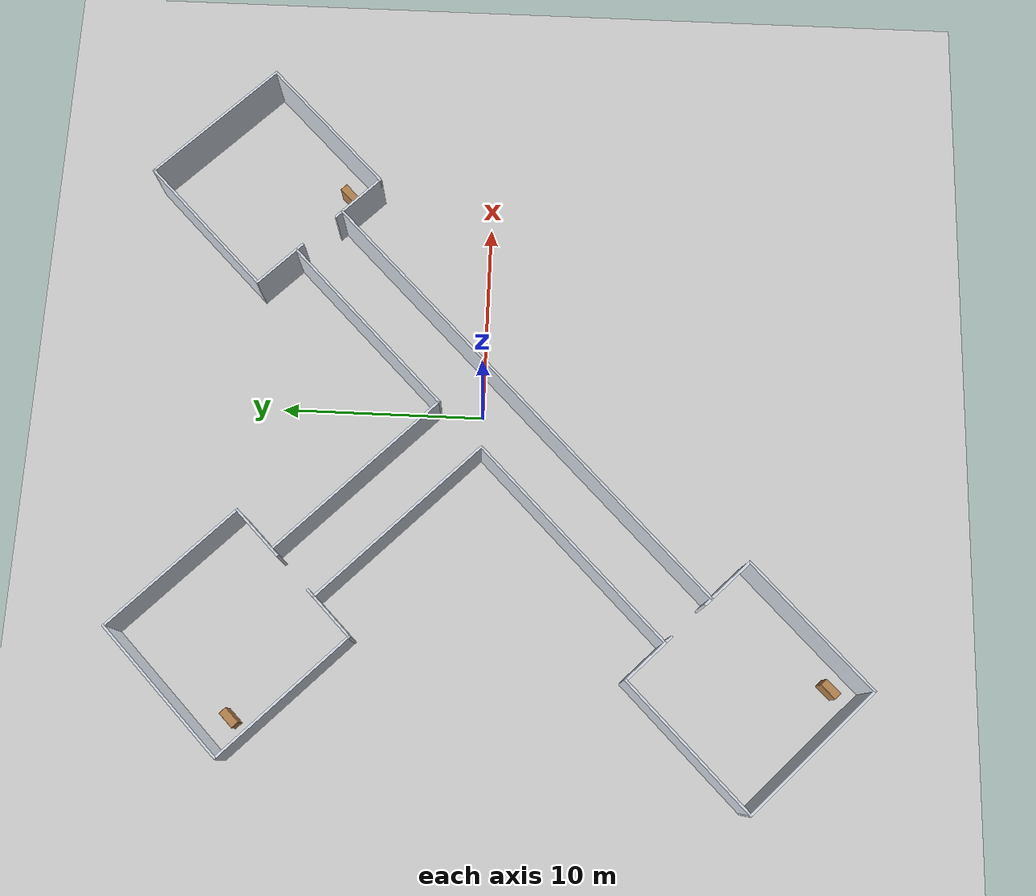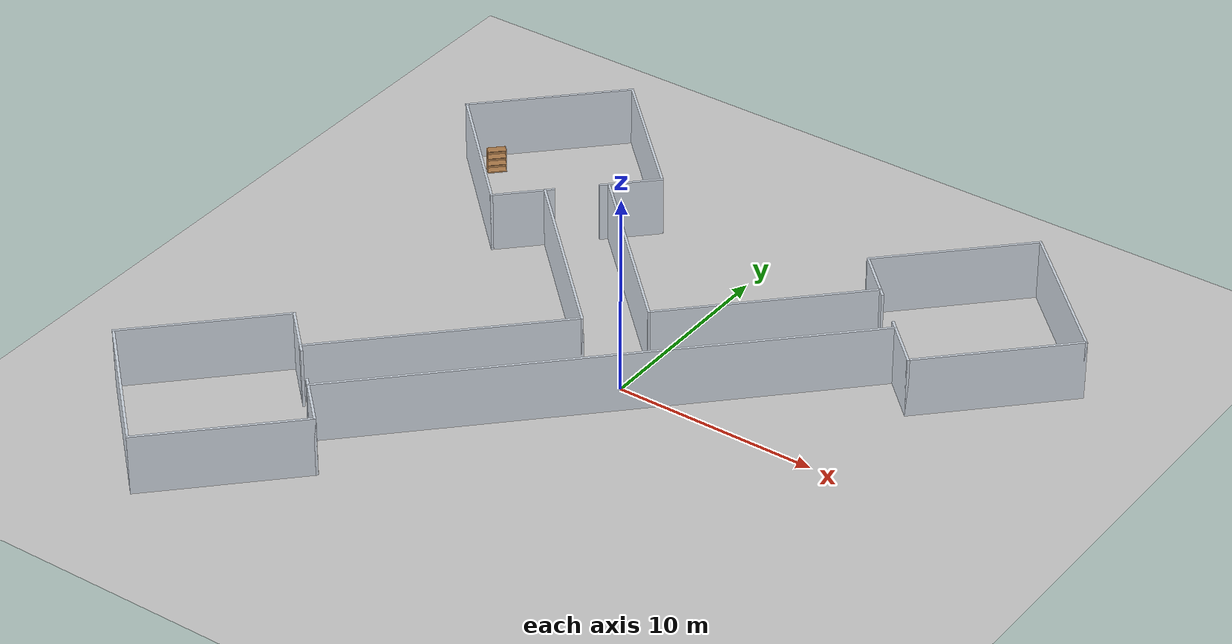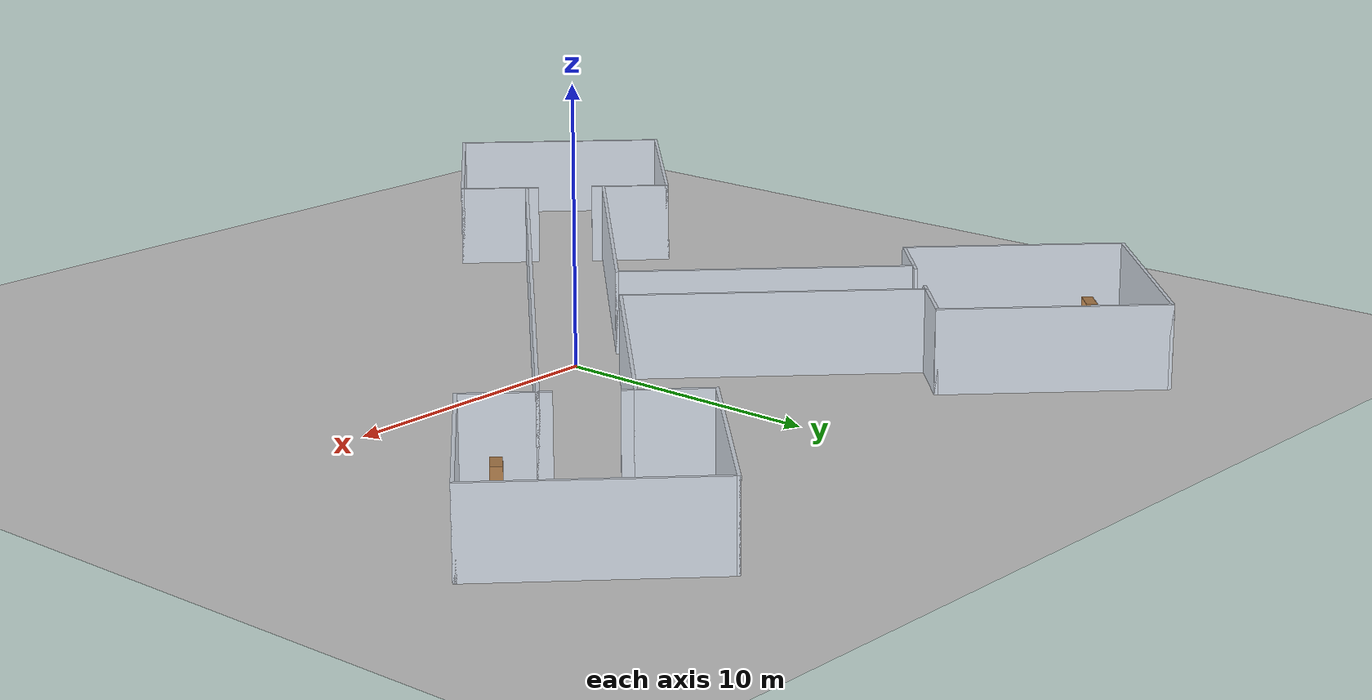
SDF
<sdf version="1.6">
 <world name="semantic_t_junction_rotated">
  <gravity>0 0 -9.8</gravity>
  <physics type="ode">
   <max_step_size>0.001</max_step_size>
   <real_time_factor>1</real_time_factor>
   <real_time_update_rate>1000</real_time_update_rate>
  </physics>
  <scene>
   <ambient>0.45 0.45 0.45 1</ambient>
   <background>0.72 0.72 0.72 1</background>
   <shadows>true</shadows>
  </scene>
  <light name="sun" type="directional">
   <pose>0 0 10 0 0 0</pose>
   <diffuse>0.8 0.8 0.8 1</diffuse>
   <specular>0.2 0.2 0.2 1</specular>
   <direction>-0.5 0.2 -0.9</direction>
  </light>
  <model name="ground_plane">
   <static>true</static>
   <link name="link">
    <collision name="collision">
     <geometry><plane><normal>0 0 1</normal><size>60 60</size></plane></geometry>
    </collision>
    <visual name="visual">
     <geometry><plane><normal>0 0 1</normal><size>60 60</size></plane></geometry>
     <material>
      <script><uri>file://media/materials/scripts/gazebo.material</uri><name>Gazebo/Grey</name></script>
     </material>
    </visual>
   </link>
  </model>
  <model name="semantic_room_structure">
   <static>true</static>
   <link name="walls">
    <collision name="wall_0_collision">
     <pose>-18.0 -4.0 1.5 0 0 0.0</pose>
     <geometry><box><size>8.12 0.12 3</size></box></geometry>
    </collision>
    <visual name="wall_0_visual">
     <pose>-18.0 -4.0 1.5 0 0 0.0</pose>
     <geometry><box><size>8.12 0.12 3</size></box></geometry>
     <material><ambient>0.82 0.85 0.89 1</ambient><diffuse>0.82 0.85 0.89 1</diffuse></material>
    </visual>
    <collision name="wall_1_collision">
     <pose>16.0 -4.0 1.5 0 0 0.0</pose>
     <geometry><box><size>8.12 0.12 3</size></box></geometry>
    </collision>
    <visual name="wall_1_visual">
     <pose>16.0 -4.0 1.5 0 0 0.0</pose>
     <geometry><box><size>8.12 0.12 3</size></box></geometry>
     <material><ambient>0.82 0.85 0.89 1</ambient><diffuse>0.82 0.85 0.89 1</diffuse></material>
    </visual>
    <collision name="wall_2_collision">
     <pose>-1.0 -1.5 1.5 0 0 0.0</pose>
     <geometry><box><size>26.12 0.12 3</size></box></geometry>
    </collision>
    <visual name="wall_2_visual">
     <pose>-1.0 -1.5 1.5 0 0 0.0</pose>
     <geometry><box><size>26.12 0.12 3</size></box></geometry>
     <material><ambient>0.82 0.85 0.89 1</ambient><diffuse>0.82 0.85 0.89 1</diffuse></material>
    </visual>
    <collision name="wall_3_collision">
     <pose>-7.75 1.5 1.5 0 0 0.0</pose>
     <geometry><box><size>12.62 0.12 3</size></box></geometry>
    </collision>
    <visual name="wall_3_visual">
     <pose>-7.75 1.5 1.5 0 0 0.0</pose>
     <geometry><box><size>12.62 0.12 3</size></box></geometry>
     <material><ambient>0.82 0.85 0.89 1</ambient><diffuse>0.82 0.85 0.89 1</diffuse></material>
    </visual>
    <collision name="wall_4_collision">
     <pose>6.75 1.5 1.5 0 0 0.0</pose>
     <geometry><box><size>10.62 0.12 3</size></box></geometry>
    </collision>
    <visual name="wall_4_visual">
     <pose>6.75 1.5 1.5 0 0 0.0</pose>
     <geometry><box><size>10.62 0.12 3</size></box></geometry>
     <material><ambient>0.82 0.85 0.89 1</ambient><diffuse>0.82 0.85 0.89 1</diffuse></material>
    </visual>
    <collision name="wall_5_collision">
     <pose>-18.0 4.0 1.5 0 0 0.0</pose>
     <geometry><box><size>8.12 0.12 3</size></box></geometry>
    </collision>
    <visual name="wall_5_visual">
     <pose>-18.0 4.0 1.5 0 0 0.0</pose>
     <geometry><box><size>8.12 0.12 3</size></box></geometry>
     <material><ambient>0.82 0.85 0.89 1</ambient><diffuse>0.82 0.85 0.89 1</diffuse></material>
    </visual>
    <collision name="wall_6_collision">
     <pose>16.0 4.0 1.5 0 0 0.0</pose>
     <geometry><box><size>8.12 0.12 3</size></box></geometry>
    </collision>
    <visual name="wall_6_visual">
     <pose>16.0 4.0 1.5 0 0 0.0</pose>
     <geometry><box><size>8.12 0.12 3</size></box></geometry>
     <material><ambient>0.82 0.85 0.89 1</ambient><diffuse>0.82 0.85 0.89 1</diffuse></material>
    </visual>
    <collision name="wall_7_collision">
     <pose>-2.75 12.0 1.5 0 0 0.0</pose>
     <geometry><box><size>2.62 0.12 3</size></box></geometry>
    </collision>
    <visual name="wall_7_visual">
     <pose>-2.75 12.0 1.5 0 0 0.0</pose>
     <geometry><box><size>2.62 0.12 3</size></box></geometry>
     <material><ambient>0.82 0.85 0.89 1</ambient><diffuse>0.82 0.85 0.89 1</diffuse></material>
    </visual>
    <collision name="wall_8_collision">
     <pose>2.75 12.0 1.5 0 0 0.0</pose>
     <geometry><box><size>2.62 0.12 3</size></box></geometry>
    </collision>
    <visual name="wall_8_visual">
     <pose>2.75 12.0 1.5 0 0 0.0</pose>
     <geometry><box><size>2.62 0.12 3</size></box></geometry>
     <material><ambient>0.82 0.85 0.89 1</ambient><diffuse>0.82 0.85 0.89 1</diffuse></material>
    </visual>
    <collision name="wall_9_collision">
     <pose>0.0 20.0 1.5 0 0 0.0</pose>
     <geometry><box><size>8.12 0.12 3</size></box></geometry>
    </collision>
    <visual name="wall_9_visual">
     <pose>0.0 20.0 1.5 0 0 0.0</pose>
     <geometry><box><size>8.12 0.12 3</size></box></geometry>
     <material><ambient>0.82 0.85 0.89 1</ambient><diffuse>0.82 0.85 0.89 1</diffuse></material>
    </visual>
    <collision name="wall_10_collision">
     <pose>-22.0 0.0 1.5 0 0 1.5707963267948966</pose>
     <geometry><box><size>8.12 0.12 3</size></box></geometry>
    </collision>
    <visual name="wall_10_visual">
     <pose>-22.0 0.0 1.5 0 0 1.5707963267948966</pose>
     <geometry><box><size>8.12 0.12 3</size></box></geometry>
     <material><ambient>0.82 0.85 0.89 1</ambient><diffuse>0.82 0.85 0.89 1</diffuse></material>
    </visual>
    <collision name="wall_11_collision">
     <pose>-14.0 -2.75 1.5 0 0 1.5707963267948966</pose>
     <geometry><box><size>2.62 0.12 3</size></box></geometry>
    </collision>
    <visual name="wall_11_visual">
     <pose>-14.0 -2.75 1.5 0 0 1.5707963267948966</pose>
     <geometry><box><size>2.62 0.12 3</size></box></geometry>
     <material><ambient>0.82 0.85 0.89 1</ambient><diffuse>0.82 0.85 0.89 1</diffuse></material>
    </visual>
    <collision name="wall_12_collision">
     <pose>-14.0 2.75 1.5 0 0 1.5707963267948966</pose>
     <geometry><box><size>2.62 0.12 3</size></box></geometry>
    </collision>
    <visual name="wall_12_visual">
     <pose>-14.0 2.75 1.5 0 0 1.5707963267948966</pose>
     <geometry><box><size>2.62 0.12 3</size></box></geometry>
     <material><ambient>0.82 0.85 0.89 1</ambient><diffuse>0.82 0.85 0.89 1</diffuse></material>
    </visual>
    <collision name="wall_13_collision">
     <pose>-4.0 16.0 1.5 0 0 1.5707963267948966</pose>
     <geometry><box><size>8.12 0.12 3</size></box></geometry>
    </collision>
    <visual name="wall_13_visual">
     <pose>-4.0 16.0 1.5 0 0 1.5707963267948966</pose>
     <geometry><box><size>8.12 0.12 3</size></box></geometry>
     <material><ambient>0.82 0.85 0.89 1</ambient><diffuse>0.82 0.85 0.89 1</diffuse></material>
    </visual>
    <collision name="wall_14_collision">
     <pose>-1.5 6.75 1.5 0 0 1.5707963267948966</pose>
     <geometry><box><size>10.62 0.12 3</size></box></geometry>
    </collision>
    <visual name="wall_14_visual">
     <pose>-1.5 6.75 1.5 0 0 1.5707963267948966</pose>
     <geometry><box><size>10.62 0.12 3</size></box></geometry>
     <material><ambient>0.82 0.85 0.89 1</ambient><diffuse>0.82 0.85 0.89 1</diffuse></material>
    </visual>
    <collision name="wall_15_collision">
     <pose>1.5 6.75 1.5 0 0 1.5707963267948966</pose>
     <geometry><box><size>10.62 0.12 3</size></box></geometry>
    </collision>
    <visual name="wall_15_visual">
     <pose>1.5 6.75 1.5 0 0 1.5707963267948966</pose>
     <geometry><box><size>10.62 0.12 3</size></box></geometry>
     <material><ambient>0.82 0.85 0.89 1</ambient><diffuse>0.82 0.85 0.89 1</diffuse></material>
    </visual>
    <collision name="wall_16_collision">
     <pose>4.0 16.0 1.5 0 0 1.5707963267948966</pose>
     <geometry><box><size>8.12 0.12 3</size></box></geometry>
    </collision>
    <visual name="wall_16_visual">
     <pose>4.0 16.0 1.5 0 0 1.5707963267948966</pose>
     <geometry><box><size>8.12 0.12 3</size></box></geometry>
     <material><ambient>0.82 0.85 0.89 1</ambient><diffuse>0.82 0.85 0.89 1</diffuse></material>
    </visual>
    <collision name="wall_17_collision">
     <pose>12.0 -2.75 1.5 0 0 1.5707963267948966</pose>
     <geometry><box><size>2.62 0.12 3</size></box></geometry>
    </collision>
    <visual name="wall_17_visual">
     <pose>12.0 -2.75 1.5 0 0 1.5707963267948966</pose>
     <geometry><box><size>2.62 0.12 3</size></box></geometry>
     <material><ambient>0.82 0.85 0.89 1</ambient><diffuse>0.82 0.85 0.89 1</diffuse></material>
    </visual>
    <collision name="wall_18_collision">
     <pose>12.0 2.75 1.5 0 0 1.5707963267948966</pose>
     <geometry><box><size>2.62 0.12 3</size></box></geometry>
    </collision>
    <visual name="wall_18_visual">
     <pose>12.0 2.75 1.5 0 0 1.5707963267948966</pose>
     <geometry><box><size>2.62 0.12 3</size></box></geometry>
     <material><ambient>0.82 0.85 0.89 1</ambient><diffuse>0.82 0.85 0.89 1</diffuse></material>
    </visual>
    <collision name="wall_19_collision">
     <pose>20.0 0.0 1.5 0 0 1.5707963267948966</pose>
     <geometry><box><size>8.12 0.12 3</size></box></geometry>
    </collision>
    <visual name="wall_19_visual">
     <pose>20.0 0.0 1.5 0 0 1.5707963267948966</pose>
     <geometry><box><size>8.12 0.12 3</size></box></geometry>
     <material><ambient>0.82 0.85 0.89 1</ambient><diffuse>0.82 0.85 0.89 1</diffuse></material>
    </visual>
    <collision name="wall_20_collision">
     <pose>-14.0 -1.3 1.5 0 0 1.5707963267948966</pose>
     <geometry><box><size>0.5199999999999999 0.12 3</size></box></geometry>
    </collision>
    <visual name="wall_20_visual">
     <pose>-14.0 -1.3 1.5 0 0 1.5707963267948966</pose>
     <geometry><box><size>0.5199999999999999 0.12 3</size></box></geometry>
     <material><ambient>0.82 0.85 0.89 1</ambient><diffuse>0.82 0.85 0.89 1</diffuse></material>
    </visual>
    <collision name="wall_21_collision">
     <pose>-14.0 1.3 1.5 0 0 1.5707963267948966</pose>
     <geometry><box><size>0.5199999999999999 0.12 3</size></box></geometry>
    </collision>
    <visual name="wall_21_visual">
     <pose>-14.0 1.3 1.5 0 0 1.5707963267948966</pose>
     <geometry><box><size>0.5199999999999999 0.12 3</size></box></geometry>
     <material><ambient>0.82 0.85 0.89 1</ambient><diffuse>0.82 0.85 0.89 1</diffuse></material>
    </visual>
    <collision name="wall_22_collision">
     <pose>12.0 -1.3 1.5 0 0 1.5707963267948966</pose>
     <geometry><box><size>0.5199999999999999 0.12 3</size></box></geometry>
    </collision>
    <visual name="wall_22_visual">
     <pose>12.0 -1.3 1.5 0 0 1.5707963267948966</pose>
     <geometry><box><size>0.5199999999999999 0.12 3</size></box></geometry>
     <material><ambient>0.82 0.85 0.89 1</ambient><diffuse>0.82 0.85 0.89 1</diffuse></material>
    </visual>
    <collision name="wall_23_collision">
     <pose>12.0 1.3 1.5 0 0 1.5707963267948966</pose>
     <geometry><box><size>0.5199999999999999 0.12 3</size></box></geometry>
    </collision>
    <visual name="wall_23_visual">
     <pose>12.0 1.3 1.5 0 0 1.5707963267948966</pose>
     <geometry><box><size>0.5199999999999999 0.12 3</size></box></geometry>
     <material><ambient>0.82 0.85 0.89 1</ambient><diffuse>0.82 0.85 0.89 1</diffuse></material>
    </visual>
    <collision name="wall_24_collision">
     <pose>-1.3 12.0 1.5 0 0 0.0</pose>
     <geometry><box><size>0.5199999999999999 0.12 3</size></box></geometry>
    </collision>
    <visual name="wall_24_visual">
     <pose>-1.3 12.0 1.5 0 0 0.0</pose>
     <geometry><box><size>0.5199999999999999 0.12 3</size></box></geometry>
     <material><ambient>0.82 0.85 0.89 1</ambient><diffuse>0.82 0.85 0.89 1</diffuse></material>
    </visual>
    <collision name="wall_25_collision">
     <pose>1.3 12.0 1.5 0 0 0.0</pose>
     <geometry><box><size>0.5199999999999999 0.12 3</size></box></geometry>
    </collision>
    <visual name="wall_25_visual">
     <pose>1.3 12.0 1.5 0 0 0.0</pose>
     <geometry><box><size>0.5199999999999999 0.12 3</size></box></geometry>
     <material><ambient>0.82 0.85 0.89 1</ambient><diffuse>0.82 0.85 0.89 1</diffuse></material>
    </visual>
   </link>
   <pose>0 0 0 0 0 0.785398163397</pose>
  </model>
  <model name="west_lounge_bookshelf_5">
   <link name="link">
    <inertial><mass>1.0</mass></inertial>
    <collision name="back">
     <pose>0 0.005 0.6 0 0 0</pose>
     <geometry><box><size>0.9 0.01 1.2</size></box></geometry>
    </collision>
    <visual name="visual1">
     <pose>0 0.005 0.6 0 0 0</pose>
     <geometry><box><size>0.9 0.01 1.2</size></box></geometry>
     <material>
      <script><uri>file://media/materials/scripts/gazebo.material</uri><name>Gazebo/Wood</name></script>
     </material>
    </visual>
    <collision name="left_side">
     <pose>0.45 -0.195 0.6 0 0 0</pose>
     <geometry><box><size>0.02 0.4 1.2</size></box></geometry>
    </collision>
    <visual name="visual2">
     <pose>0.45 -0.195 0.6 0 0 0</pose>
     <geometry><box><size>0.02 0.4 1.2</size></box></geometry>
     <material>
      <script><uri>file://media/materials/scripts/gazebo.material</uri><name>Gazebo/Wood</name></script>
     </material>
    </visual>
    <collision name="right_side">
     <pose>-0.45 -0.195 0.6 0 0 0</pose>
     <geometry><box><size>0.02 0.4 1.2</size></box></geometry>
    </collision>
    <visual name="visual3">
     <pose>-0.45 -0.195 0.6 0 0 0</pose>
     <geometry><box><size>0.02 0.4 1.2</size></box></geometry>
     <material>
      <script><uri>file://media/materials/scripts/gazebo.material</uri><name>Gazebo/Wood</name></script>
     </material>
    </visual>
    <collision name="bottom">
     <pose>0 -0.195 0.03 0 0 0</pose>
     <geometry><box><size>0.88 0.4 0.06</size></box></geometry>
    </collision>
    <visual name="visual4">
     <pose>0 -0.195 0.03 0 0 0</pose>
     <geometry><box><size>0.88 0.4 0.06</size></box></geometry>
     <material>
      <script><uri>file://media/materials/scripts/gazebo.material</uri><name>Gazebo/Wood</name></script>
     </material>
    </visual>
    <collision name="top">
     <pose>0 -0.195 1.19 0 0 0</pose>
     <geometry><box><size>0.88 0.4 0.02</size></box></geometry>
    </collision>
    <visual name="visual5">
     <pose>0 -0.195 1.19 0 0 0</pose>
     <geometry><box><size>0.88 0.4 0.02</size></box></geometry>
     <material>
      <script><uri>file://media/materials/scripts/gazebo.material</uri><name>Gazebo/Wood</name></script>
     </material>
    </visual>
    <collision name="low_shelf">
     <pose>0 -0.195 0.43 0 0 0</pose>
     <geometry><box><size>0.88 0.4 0.02</size></box></geometry>
    </collision>
    <visual name="visual6">
     <pose>0 -0.195 0.43 0 0 0</pose>
     <geometry><box><size>0.88 0.4 0.02</size></box></geometry>
     <material>
      <script><uri>file://media/materials/scripts/gazebo.material</uri><name>Gazebo/Wood</name></script>
     </material>
    </visual>
    <collision name="high_shelf">
     <pose>0 -0.195 0.8 0 0 0</pose>
     <geometry><box><size>0.88 0.4 0.02</size></box></geometry>
    </collision>
    <visual name="visual7">
     <pose>0 -0.195 0.8 0 0 0</pose>
     <geometry><box><size>0.88 0.4 0.02</size></box></geometry>
     <material>
      <script><uri>file://media/materials/scripts/gazebo.material</uri><name>Gazebo/Wood</name></script>
     </material>
    </visual>
   </link>
   <pose>-12.7279220614 -16.687720036 0 0 0 0.785398163397</pose>
   <static>true</static>
  </model>
  <model name="east_office_bookshelf_12">
   <link name="link">
    <inertial><mass>1.0</mass></inertial>
    <collision name="back">
     <pose>0 0.005 0.6 0 0 0</pose>
     <geometry><box><size>0.9 0.01 1.2</size></box></geometry>
    </collision>
    <visual name="visual1">
     <pose>0 0.005 0.6 0 0 0</pose>
     <geometry><box><size>0.9 0.01 1.2</size></box></geometry>
     <material>
      <script><uri>file://media/materials/scripts/gazebo.material</uri><name>Gazebo/Wood</name></script>
     </material>
    </visual>
    <collision name="left_side">
     <pose>0.45 -0.195 0.6 0 0 0</pose>
     <geometry><box><size>0.02 0.4 1.2</size></box></geometry>
    </collision>
    <visual name="visual2">
     <pose>0.45 -0.195 0.6 0 0 0</pose>
     <geometry><box><size>0.02 0.4 1.2</size></box></geometry>
     <material>
      <script><uri>file://media/materials/scripts/gazebo.material</uri><name>Gazebo/Wood</name></script>
     </material>
    </visual>
    <collision name="right_side">
     <pose>-0.45 -0.195 0.6 0 0 0</pose>
     <geometry><box><size>0.02 0.4 1.2</size></box></geometry>
    </collision>
    <visual name="visual3">
     <pose>-0.45 -0.195 0.6 0 0 0</pose>
     <geometry><box><size>0.02 0.4 1.2</size></box></geometry>
     <material>
      <script><uri>file://media/materials/scripts/gazebo.material</uri><name>Gazebo/Wood</name></script>
     </material>
    </visual>
    <collision name="bottom">
     <pose>0 -0.195 0.03 0 0 0</pose>
     <geometry><box><size>0.88 0.4 0.06</size></box></geometry>
    </collision>
    <visual name="visual4">
     <pose>0 -0.195 0.03 0 0 0</pose>
     <geometry><box><size>0.88 0.4 0.06</size></box></geometry>
     <material>
      <script><uri>file://media/materials/scripts/gazebo.material</uri><name>Gazebo/Wood</name></script>
     </material>
    </visual>
    <collision name="top">
     <pose>0 -0.195 1.19 0 0 0</pose>
     <geometry><box><size>0.88 0.4 0.02</size></box></geometry>
    </collision>
    <visual name="visual5">
     <pose>0 -0.195 1.19 0 0 0</pose>
     <geometry><box><size>0.88 0.4 0.02</size></box></geometry>
     <material>
      <script><uri>file://media/materials/scripts/gazebo.material</uri><name>Gazebo/Wood</name></script>
     </material>
    </visual>
    <collision name="low_shelf">
     <pose>0 -0.195 0.43 0 0 0</pose>
     <geometry><box><size>0.88 0.4 0.02</size></box></geometry>
    </collision>
    <visual name="visual6">
     <pose>0 -0.195 0.43 0 0 0</pose>
     <geometry><box><size>0.88 0.4 0.02</size></box></geometry>
     <material>
      <script><uri>file://media/materials/scripts/gazebo.material</uri><name>Gazebo/Wood</name></script>
     </material>
    </visual>
    <collision name="high_shelf">
     <pose>0 -0.195 0.8 0 0 0</pose>
     <geometry><box><size>0.88 0.4 0.02</size></box></geometry>
    </collision>
    <visual name="visual7">
     <pose>0 -0.195 0.8 0 0 0</pose>
     <geometry><box><size>0.88 0.4 0.02</size></box></geometry>
     <material>
      <script><uri>file://media/materials/scripts/gazebo.material</uri><name>Gazebo/Wood</name></script>
     </material>
    </visual>
   </link>
   <pose>11.1722871427 7.49533188058 0 0 0 0.785398163397</pose>
   <static>true</static>
  </model>
  <model name="north_meeting_bookshelf_11">
   <link name="link">
    <inertial><mass>1.0</mass></inertial>
    <collision name="back">
     <pose>0 0.005 0.6 0 0 0</pose>
     <geometry><box><size>0.9 0.01 1.2</size></box></geometry>
    </collision>
    <visual name="visual1">
     <pose>0 0.005 0.6 0 0 0</pose>
     <geometry><box><size>0.9 0.01 1.2</size></box></geometry>
     <material>
      <script><uri>file://media/materials/scripts/gazebo.material</uri><name>Gazebo/Wood</name></script>
     </material>
    </visual>
    <collision name="left_side">
     <pose>0.45 -0.195 0.6 0 0 0</pose>
     <geometry><box><size>0.02 0.4 1.2</size></box></geometry>
    </collision>
    <visual name="visual2">
     <pose>0.45 -0.195 0.6 0 0 0</pose>
     <geometry><box><size>0.02 0.4 1.2</size></box></geometry>
     <material>
      <script><uri>file://media/materials/scripts/gazebo.material</uri><name>Gazebo/Wood</name></script>
     </material>
    </visual>
    <collision name="right_side">
     <pose>-0.45 -0.195 0.6 0 0 0</pose>
     <geometry><box><size>0.02 0.4 1.2</size></box></geometry>
    </collision>
    <visual name="visual3">
     <pose>-0.45 -0.195 0.6 0 0 0</pose>
     <geometry><box><size>0.02 0.4 1.2</size></box></geometry>
     <material>
      <script><uri>file://media/materials/scripts/gazebo.material</uri><name>Gazebo/Wood</name></script>
     </material>
    </visual>
    <collision name="bottom">
     <pose>0 -0.195 0.03 0 0 0</pose>
     <geometry><box><size>0.88 0.4 0.06</size></box></geometry>
    </collision>
    <visual name="visual4">
     <pose>0 -0.195 0.03 0 0 0</pose>
     <geometry><box><size>0.88 0.4 0.06</size></box></geometry>
     <material>
      <script><uri>file://media/materials/scripts/gazebo.material</uri><name>Gazebo/Wood</name></script>
     </material>
    </visual>
    <collision name="top">
     <pose>0 -0.195 1.19 0 0 0</pose>
     <geometry><box><size>0.88 0.4 0.02</size></box></geometry>
    </collision>
    <visual name="visual5">
     <pose>0 -0.195 1.19 0 0 0</pose>
     <geometry><box><size>0.88 0.4 0.02</size></box></geometry>
     <material>
      <script><uri>file://media/materials/scripts/gazebo.material</uri><name>Gazebo/Wood</name></script>
     </material>
    </visual>
    <collision name="low_shelf">
     <pose>0 -0.195 0.43 0 0 0</pose>
     <geometry><box><size>0.88 0.4 0.02</size></box></geometry>
    </collision>
    <visual name="visual6">
     <pose>0 -0.195 0.43 0 0 0</pose>
     <geometry><box><size>0.88 0.4 0.02</size></box></geometry>
     <material>
      <script><uri>file://media/materials/scripts/gazebo.material</uri><name>Gazebo/Wood</name></script>
     </material>
    </visual>
    <collision name="high_shelf">
     <pose>0 -0.195 0.8 0 0 0</pose>
     <geometry><box><size>0.88 0.4 0.02</size></box></geometry>
    </collision>
    <visual name="visual7">
     <pose>0 -0.195 0.8 0 0 0</pose>
     <geometry><box><size>0.88 0.4 0.02</size></box></geometry>
     <material>
      <script><uri>file://media/materials/scripts/gazebo.material</uri><name>Gazebo/Wood</name></script>
     </material>
    </visual>
   </link>
   <pose>-15.2735064736 11.313708499 0 0 0 0.785398163397</pose>
   <static>true</static>
  </model>
 </world>
</sdf>
